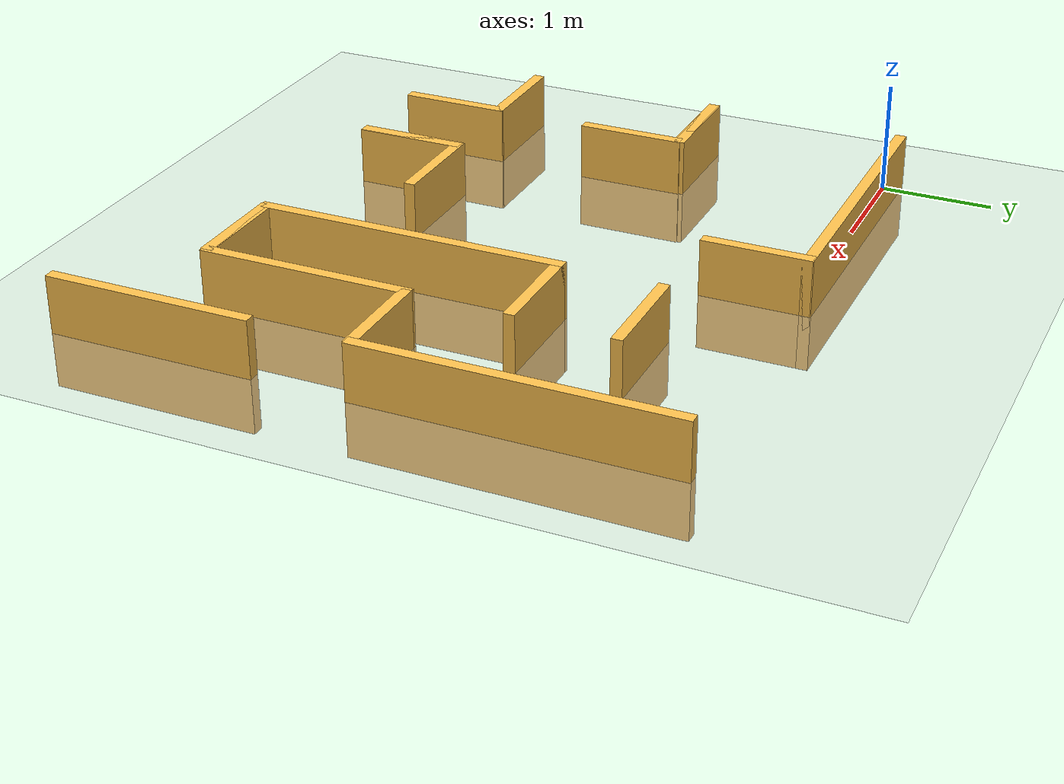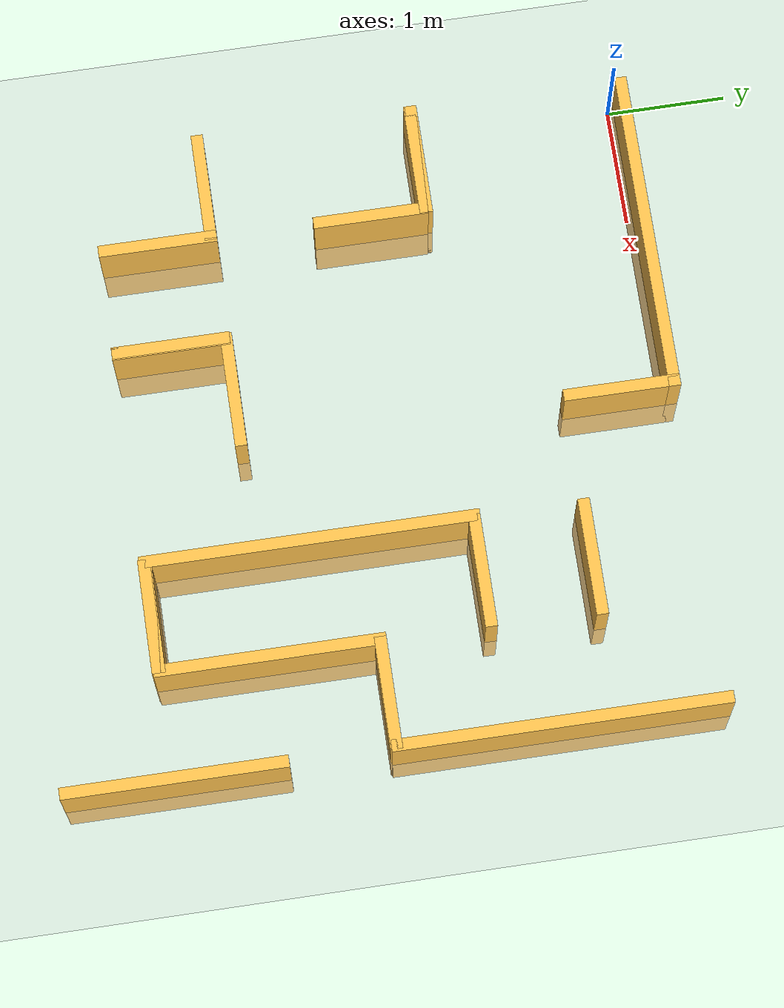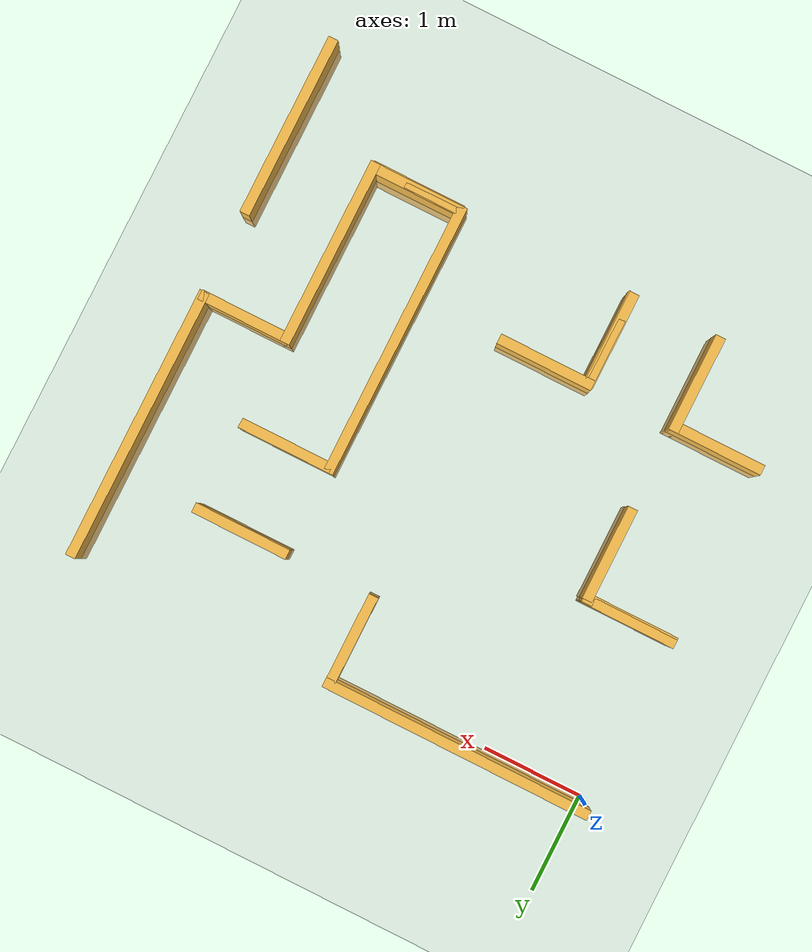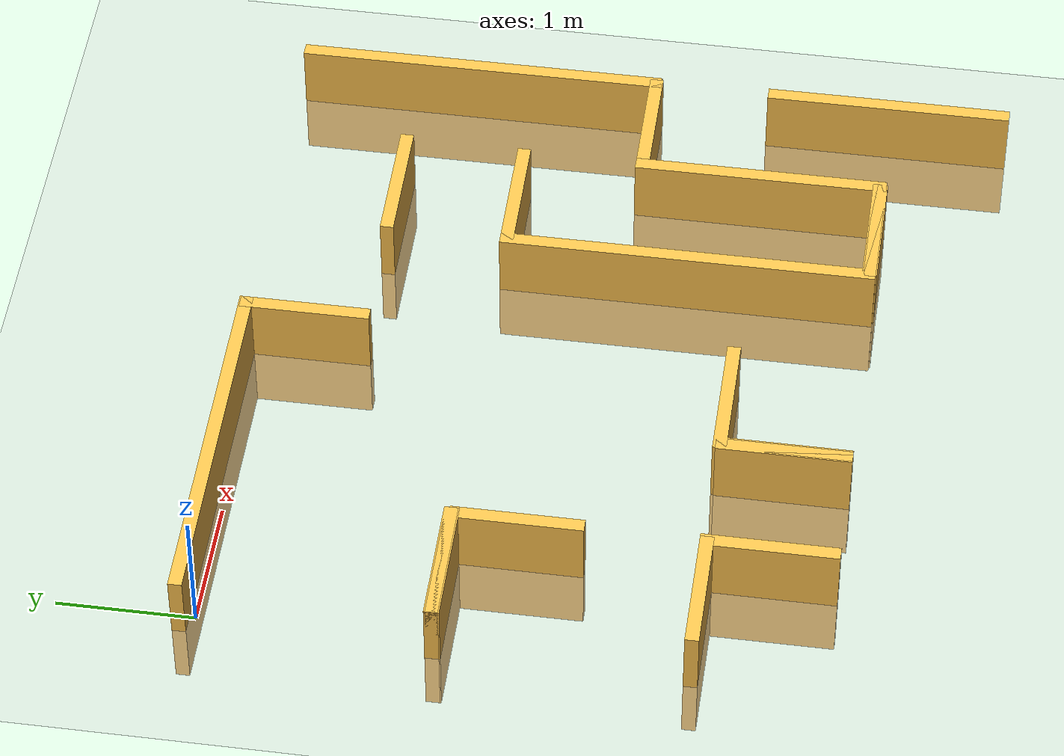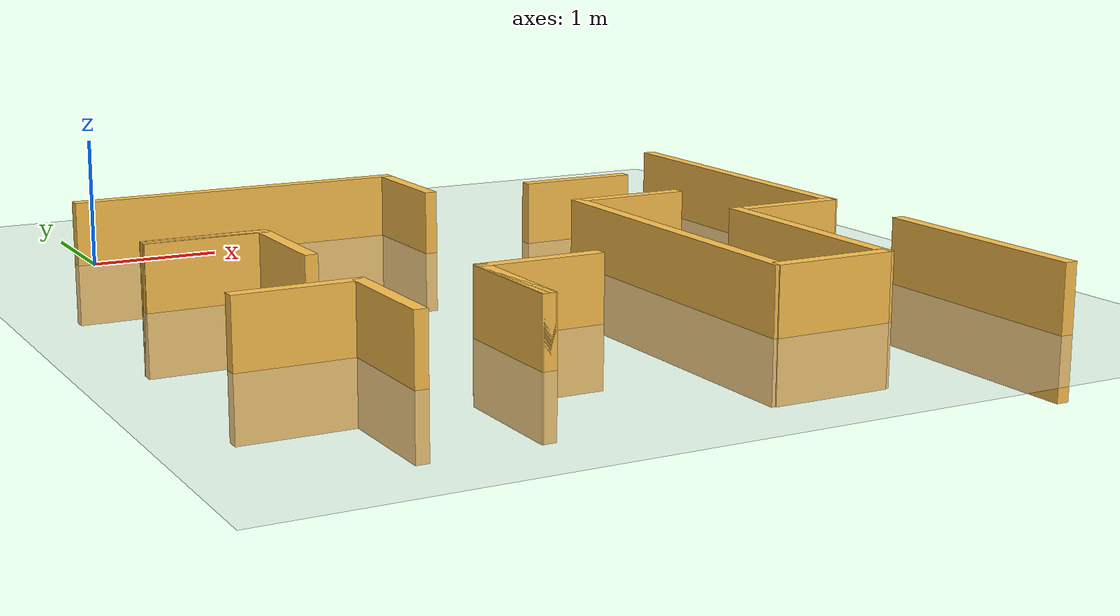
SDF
<sdf version="1.7">
 <world name="default">
  <model name="ground_plane">
   <static>1</static>
   <link name="link">
    <collision name="collision">
     <geometry><plane><normal>0 0 1</normal><size>100 100</size></plane></geometry>
     <surface><friction><ode><mu>100</mu><mu2>50</mu2></ode></friction></surface>
    </collision>
    <visual name="visual">
     <cast_shadows>0</cast_shadows>
     <geometry><plane><normal>0 0 1</normal><size>100 100</size></plane></geometry>
     <material>
      <script><uri>file://media/materials/scripts/gazebo.material</uri><name>Gazebo/Grey</name></script>
     </material>
    </visual>
   </link>
  </model>
  <model name="maze_test">
   <link name="Wall_20">
    <visual name="Wall_20_Visual">
     <pose>4.4 3.495 0 0 -0 0</pose>
     <geometry><box><size>0.1 1.89 1</size></box></geometry>
     <material>
      <script><uri>file://media/materials/scripts/gazebo.material</uri><name>Gazebo/Grey</name></script>
      <ambient>1 0.764706 0.305882 1</ambient>
      <diffuse>0.7 0.7 0.7 1</diffuse>
      <specular>0.01 0.01 0.01 1</specular>
      <emissive>0 0 0 1</emissive>
      <shader type="pixel"/>
     </material>
    </visual>
    <collision name="Wall_20_Collision">
     <pose>4.4 3.495 0 0 -0 0</pose>
     <geometry><box><size>0.1 1.89 1</size></box></geometry>
     <surface>
      <friction><ode><mu>1</mu><mu2>1</mu2><fdir1>0 0 0</fdir1><slip1>0</slip1><slip2>0</slip2></ode></friction>
      <bounce><restitution_coefficient>0</restitution_coefficient><threshold>1e+06</threshold></bounce>
      <contact>
       <collide_without_contact>0</collide_without_contact>
       <collide_without_contact_bitmask>1</collide_without_contact_bitmask>
       <collide_bitmask>1</collide_bitmask>
       <ode>
        <soft_cfm>0</soft_cfm>
        <soft_erp>0.2</soft_erp>
        <kp>1e+13</kp>
        <kd>1</kd>
        <max_vel>0.01</max_vel>
        <min_depth>0</min_depth>
       </ode>
       <bullet>
        <split_impulse>1</split_impulse>
        <split_impulse_penetration_threshold>-0.01</split_impulse_penetration_threshold>
        <soft_cfm>0</soft_cfm>
        <soft_erp>0.2</soft_erp>
        <kp>1e+13</kp>
        <kd>1</kd>
       </bullet>
      </contact>
     </surface>
    </collision>
   </link>
   <link name="Wall_21">
    <visual name="Wall_21_Visual">
     <pose>2.14 3.49 0 0 -0 0</pose>
     <geometry><box><size>0.98 0.1 1</size></box></geometry>
     <material>
      <script><uri>file://media/materials/scripts/gazebo.material</uri><name>Gazebo/Grey</name></script>
      <ambient>1 0.764706 0.305882 1</ambient>
      <diffuse>0.7 0.7 0.7 1</diffuse>
      <specular>0.01 0.01 0.01 1</specular>
      <emissive>0 0 0 1</emissive>
      <shader type="pixel"/>
     </material>
    </visual>
    <collision name="Wall_21_Collision">
     <pose>2.14 3.49 0 0 -0 0</pose>
     <geometry><box><size>0.98 0.1 1</size></box></geometry>
     <surface>
      <friction><ode><mu>1</mu><mu2>1</mu2><fdir1>0 0 0</fdir1><slip1>0</slip1><slip2>0</slip2></ode></friction>
      <bounce><restitution_coefficient>0</restitution_coefficient><threshold>1e+06</threshold></bounce>
      <contact>
       <collide_without_contact>0</collide_without_contact>
       <collide_without_contact_bitmask>1</collide_without_contact_bitmask>
       <collide_bitmask>1</collide_bitmask>
       <ode>
        <soft_cfm>0</soft_cfm>
        <soft_erp>0.2</soft_erp>
        <kp>1e+13</kp>
        <kd>1</kd>
        <max_vel>0.01</max_vel>
        <min_depth>0</min_depth>
       </ode>
       <bullet>
        <split_impulse>1</split_impulse>
        <split_impulse_penetration_threshold>-0.01</split_impulse_penetration_threshold>
        <soft_cfm>0</soft_cfm>
        <soft_erp>0.2</soft_erp>
        <kp>1e+13</kp>
        <kd>1</kd>
       </bullet>
      </contact>
     </surface>
    </collision>
   </link>
   <link name="Wall_22">
    <visual name="Wall_22_Visual">
     <pose>0.79 3.945 0 0 -0 0</pose>
     <geometry><box><size>0.1 0.99 1</size></box></geometry>
     <material>
      <script><uri>file://media/materials/scripts/gazebo.material</uri><name>Gazebo/Grey</name></script>
      <ambient>1 0.764706 0.305882 1</ambient>
      <diffuse>0.7 0.7 0.7 1</diffuse>
      <specular>0.01 0.01 0.01 1</specular>
      <emissive>0 0 0 1</emissive>
      <shader type="pixel"/>
     </material>
    </visual>
    <collision name="Wall_22_Collision">
     <pose>0.79 3.945 0 0 -0 0</pose>
     <geometry><box><size>0.1 0.99 1</size></box></geometry>
     <surface>
      <friction><ode><mu>1</mu><mu2>1</mu2><fdir1>0 0 0</fdir1><slip1>0</slip1><slip2>0</slip2></ode></friction>
      <bounce><restitution_coefficient>0</restitution_coefficient><threshold>1e+06</threshold></bounce>
      <contact>
       <collide_without_contact>0</collide_without_contact>
       <collide_without_contact_bitmask>1</collide_without_contact_bitmask>
       <collide_bitmask>1</collide_bitmask>
       <ode>
        <soft_cfm>0</soft_cfm>
        <soft_erp>0.2</soft_erp>
        <kp>1e+13</kp>
        <kd>1</kd>
        <max_vel>0.01</max_vel>
        <min_depth>0</min_depth>
       </ode>
       <bullet>
        <split_impulse>1</split_impulse>
        <split_impulse_penetration_threshold>-0.01</split_impulse_penetration_threshold>
        <soft_cfm>0</soft_cfm>
        <soft_erp>0.2</soft_erp>
        <kp>1e+13</kp>
        <kd>1</kd>
       </bullet>
      </contact>
     </surface>
    </collision>
   </link>
   <link name="Wall_23">
    <visual name="Wall_23_Visual">
     <pose>0.35 3.5 0 0 -0 0</pose>
     <geometry><box><size>0.94 0.1 1</size></box></geometry>
     <material>
      <script><uri>file://media/materials/scripts/gazebo.material</uri><name>Gazebo/Grey</name></script>
      <ambient>1 0.764706 0.305882 1</ambient>
      <diffuse>0.7 0.7 0.7 1</diffuse>
      <specular>0.01 0.01 0.01 1</specular>
      <emissive>0 0 0 1</emissive>
      <shader type="pixel"/>
     </material>
    </visual>
    <collision name="Wall_23_Collision">
     <pose>0.35 3.5 0 0 -0 0</pose>
     <geometry><box><size>0.94 0.1 1</size></box></geometry>
     <surface>
      <friction><ode><mu>1</mu><mu2>1</mu2><fdir1>0 0 0</fdir1><slip1>0</slip1><slip2>0</slip2></ode></friction>
      <bounce><restitution_coefficient>0</restitution_coefficient><threshold>1e+06</threshold></bounce>
      <contact>
       <collide_without_contact>0</collide_without_contact>
       <collide_without_contact_bitmask>1</collide_without_contact_bitmask>
       <collide_bitmask>1</collide_bitmask>
       <ode>
        <soft_cfm>0</soft_cfm>
        <soft_erp>0.2</soft_erp>
        <kp>1e+13</kp>
        <kd>1</kd>
        <max_vel>0.01</max_vel>
        <min_depth>0</min_depth>
       </ode>
       <bullet>
        <split_impulse>1</split_impulse>
        <split_impulse_penetration_threshold>-0.01</split_impulse_penetration_threshold>
        <soft_cfm>0</soft_cfm>
        <soft_erp>0.2</soft_erp>
        <kp>1e+13</kp>
        <kd>1</kd>
       </bullet>
      </contact>
     </surface>
    </collision>
   </link>
   <link name="Wall_24">
    <visual name="Wall_24_Visual">
     <pose>3.49 3.045 0 0 -0 0</pose>
     <geometry><box><size>0.1 2.79 1</size></box></geometry>
     <material>
      <script><uri>file://media/materials/scripts/gazebo.material</uri><name>Gazebo/Grey</name></script>
      <ambient>1 0.764706 0.305882 1</ambient>
      <diffuse>0.7 0.7 0.7 1</diffuse>
      <specular>0.01 0.01 0.01 1</specular>
      <emissive>0 0 0 1</emissive>
      <shader type="pixel"/>
     </material>
    </visual>
    <collision name="Wall_24_Collision">
     <pose>3.49 3.045 0 0 -0 0</pose>
     <geometry><box><size>0.1 2.79 1</size></box></geometry>
     <surface>
      <friction><ode><mu>1</mu><mu2>1</mu2><fdir1>0 0 0</fdir1><slip1>0</slip1><slip2>0</slip2></ode></friction>
      <bounce><restitution_coefficient>0</restitution_coefficient><threshold>1e+06</threshold></bounce>
      <contact>
       <collide_without_contact>0</collide_without_contact>
       <collide_without_contact_bitmask>1</collide_without_contact_bitmask>
       <collide_bitmask>1</collide_bitmask>
       <ode>
        <soft_cfm>0</soft_cfm>
        <soft_erp>0.2</soft_erp>
        <kp>1e+13</kp>
        <kd>1</kd>
        <max_vel>0.01</max_vel>
        <min_depth>0</min_depth>
       </ode>
       <bullet>
        <split_impulse>1</split_impulse>
        <split_impulse_penetration_threshold>-0.01</split_impulse_penetration_threshold>
        <soft_cfm>0</soft_cfm>
        <soft_erp>0.2</soft_erp>
        <kp>1e+13</kp>
        <kd>1</kd>
       </bullet>
      </contact>
     </surface>
    </collision>
   </link>
   <link name="Wall_25">
    <visual name="Wall_25_Visual">
     <pose>2.59 0.34 0 0 -0 0</pose>
     <geometry><box><size>0.1 0.96 1</size></box></geometry>
     <material>
      <script><uri>file://media/materials/scripts/gazebo.material</uri><name>Gazebo/Grey</name></script>
      <ambient>1 0.764706 0.305882 1</ambient>
      <diffuse>0.7 0.7 0.7 1</diffuse>
      <specular>0.01 0.01 0.01 1</specular>
      <emissive>0 0 0 1</emissive>
      <shader type="pixel"/>
     </material>
    </visual>
    <collision name="Wall_25_Collision">
     <pose>2.59 0.34 0 0 -0 0</pose>
     <geometry><box><size>0.1 0.96 1</size></box></geometry>
     <surface>
      <friction><ode><mu>1</mu><mu2>1</mu2><fdir1>0 0 0</fdir1><slip1>0</slip1><slip2>0</slip2></ode></friction>
      <bounce><restitution_coefficient>0</restitution_coefficient><threshold>1e+06</threshold></bounce>
      <contact>
       <collide_without_contact>0</collide_without_contact>
       <collide_without_contact_bitmask>1</collide_without_contact_bitmask>
       <collide_bitmask>1</collide_bitmask>
       <ode>
        <soft_cfm>0</soft_cfm>
        <soft_erp>0.2</soft_erp>
        <kp>1e+13</kp>
        <kd>1</kd>
        <max_vel>0.01</max_vel>
        <min_depth>0</min_depth>
       </ode>
       <bullet>
        <split_impulse>1</split_impulse>
        <split_impulse_penetration_threshold>-0.01</split_impulse_penetration_threshold>
        <soft_cfm>0</soft_cfm>
        <soft_erp>0.2</soft_erp>
        <kp>1e+13</kp>
        <kd>1</kd>
       </bullet>
      </contact>
     </surface>
    </collision>
   </link>
   <link name="Wall_26">
    <visual name="Wall_26_Visual">
     <pose>0.36 1.7 0 0 -0 0</pose>
     <geometry><box><size>0.96 0.1 1</size></box></geometry>
     <material>
      <script><uri>file://media/materials/scripts/gazebo.material</uri><name>Gazebo/Grey</name></script>
      <ambient>1 0.764706 0.305882 1</ambient>
      <diffuse>0.7 0.7 0.7 1</diffuse>
      <specular>0.01 0.01 0.01 1</specular>
      <emissive>0 0 0 1</emissive>
      <shader type="pixel"/>
     </material>
    </visual>
    <collision name="Wall_26_Collision">
     <pose>0.36 1.7 0 0 -0 0</pose>
     <geometry><box><size>0.96 0.1 1</size></box></geometry>
     <surface>
      <friction><ode><mu>1</mu><mu2>1</mu2><fdir1>0 0 0</fdir1><slip1>0</slip1><slip2>0</slip2></ode></friction>
      <bounce><restitution_coefficient>0</restitution_coefficient><threshold>1e+06</threshold></bounce>
      <contact>
       <collide_without_contact>0</collide_without_contact>
       <collide_without_contact_bitmask>1</collide_without_contact_bitmask>
       <collide_bitmask>1</collide_bitmask>
       <ode>
        <soft_cfm>0</soft_cfm>
        <soft_erp>0.2</soft_erp>
        <kp>1e+13</kp>
        <kd>1</kd>
        <max_vel>0.01</max_vel>
        <min_depth>0</min_depth>
       </ode>
       <bullet>
        <split_impulse>1</split_impulse>
        <split_impulse_penetration_threshold>-0.01</split_impulse_penetration_threshold>
        <soft_cfm>0</soft_cfm>
        <soft_erp>0.2</soft_erp>
        <kp>1e+13</kp>
        <kd>1</kd>
       </bullet>
      </contact>
     </surface>
    </collision>
   </link>
   <link name="Wall_27">
    <visual name="Wall_27_Visual">
     <pose>5.28 1.255 0 0 -0 0</pose>
     <geometry><box><size>0.1 2.77 1</size></box></geometry>
     <material>
      <script><uri>file://media/materials/scripts/gazebo.material</uri><name>Gazebo/Grey</name></script>
      <ambient>1 0.764706 0.305882 1</ambient>
      <diffuse>0.7 0.7 0.7 1</diffuse>
      <specular>0.01 0.01 0.01 1</specular>
      <emissive>0 0 0 1</emissive>
      <shader type="pixel"/>
     </material>
    </visual>
    <collision name="Wall_27_Collision">
     <pose>5.28 1.255 0 0 -0 0</pose>
     <geometry><box><size>0.1 2.77 1</size></box></geometry>
     <surface>
      <friction><ode><mu>1</mu><mu2>1</mu2><fdir1>0 0 0</fdir1><slip1>0</slip1><slip2>0</slip2></ode></friction>
      <bounce><restitution_coefficient>0</restitution_coefficient><threshold>1e+06</threshold></bounce>
      <contact>
       <collide_without_contact>0</collide_without_contact>
       <collide_without_contact_bitmask>1</collide_without_contact_bitmask>
       <collide_bitmask>1</collide_bitmask>
       <ode>
        <soft_cfm>0</soft_cfm>
        <soft_erp>0.2</soft_erp>
        <kp>1e+13</kp>
        <kd>1</kd>
        <max_vel>0.01</max_vel>
        <min_depth>0</min_depth>
       </ode>
       <bullet>
        <split_impulse>1</split_impulse>
        <split_impulse_penetration_threshold>-0.01</split_impulse_penetration_threshold>
        <soft_cfm>0</soft_cfm>
        <soft_erp>0.2</soft_erp>
        <kp>1e+13</kp>
        <kd>1</kd>
       </bullet>
      </contact>
     </surface>
    </collision>
   </link>
   <link name="Wall_28">
    <visual name="Wall_28_Visual">
     <pose>0.36 1.69 0 0 -0 0</pose>
     <geometry><box><size>0.96 0.1 1</size></box></geometry>
     <material>
      <script><uri>file://media/materials/scripts/gazebo.material</uri><name>Gazebo/Grey</name></script>
      <ambient>1 0.764706 0.305882 1</ambient>
      <diffuse>0.7 0.7 0.7 1</diffuse>
      <specular>0.01 0.01 0.01 1</specular>
      <emissive>0 0 0 1</emissive>
      <shader type="pixel"/>
     </material>
    </visual>
    <collision name="Wall_28_Collision">
     <pose>0.36 1.69 0 0 -0 0</pose>
     <geometry><box><size>0.96 0.1 1</size></box></geometry>
     <surface>
      <friction><ode><mu>1</mu><mu2>1</mu2><fdir1>0 0 0</fdir1><slip1>0</slip1><slip2>0</slip2></ode></friction>
      <bounce><restitution_coefficient>0</restitution_coefficient><threshold>1e+06</threshold></bounce>
      <contact>
       <collide_without_contact>0</collide_without_contact>
       <collide_without_contact_bitmask>1</collide_without_contact_bitmask>
       <collide_bitmask>1</collide_bitmask>
       <ode>
        <soft_cfm>0</soft_cfm>
        <soft_erp>0.2</soft_erp>
        <kp>1e+13</kp>
        <kd>1</kd>
        <max_vel>0.01</max_vel>
        <min_depth>0</min_depth>
       </ode>
       <bullet>
        <split_impulse>1</split_impulse>
        <split_impulse_penetration_threshold>-0.01</split_impulse_penetration_threshold>
        <soft_cfm>0</soft_cfm>
        <soft_erp>0.2</soft_erp>
        <kp>1e+13</kp>
        <kd>1</kd>
       </bullet>
      </contact>
     </surface>
    </collision>
   </link>
   <link name="Wall_29">
    <visual name="Wall_29_Visual">
     <pose>1.26 -0.1 0 0 -0 0</pose>
     <geometry><box><size>2.76 0.1 1</size></box></geometry>
     <material>
      <script><uri>file://media/materials/scripts/gazebo.material</uri><name>Gazebo/Grey</name></script>
      <ambient>1 0.764706 0.305882 1</ambient>
      <diffuse>0.7 0.7 0.7 1</diffuse>
      <specular>0.01 0.01 0.01 1</specular>
      <emissive>0 0 0 1</emissive>
      <shader type="pixel"/>
     </material>
    </visual>
    <collision name="Wall_29_Collision">
     <pose>1.26 -0.1 0 0 -0 0</pose>
     <geometry><box><size>2.76 0.1 1</size></box></geometry>
     <surface>
      <friction><ode><mu>1</mu><mu2>1</mu2><fdir1>0 0 0</fdir1><slip1>0</slip1><slip2>0</slip2></ode></friction>
      <bounce><restitution_coefficient>0</restitution_coefficient><threshold>1e+06</threshold></bounce>
      <contact>
       <collide_without_contact>0</collide_without_contact>
       <collide_without_contact_bitmask>1</collide_without_contact_bitmask>
       <collide_bitmask>1</collide_bitmask>
       <ode>
        <soft_cfm>0</soft_cfm>
        <soft_erp>0.2</soft_erp>
        <kp>1e+13</kp>
        <kd>1</kd>
        <max_vel>0.01</max_vel>
        <min_depth>0</min_depth>
       </ode>
       <bullet>
        <split_impulse>1</split_impulse>
        <split_impulse_penetration_threshold>-0.01</split_impulse_penetration_threshold>
        <soft_cfm>0</soft_cfm>
        <soft_erp>0.2</soft_erp>
        <kp>1e+13</kp>
        <kd>1</kd>
       </bullet>
      </contact>
     </surface>
    </collision>
   </link>
   <link name="Wall_30">
    <visual name="Wall_30_Visual">
     <pose>1.7 3.95 0 0 -0 0</pose>
     <geometry><box><size>0.1 0.98 1</size></box></geometry>
     <material>
      <script><uri>file://media/materials/scripts/gazebo.material</uri><name>Gazebo/Grey</name></script>
      <ambient>1 0.764706 0.305882 1</ambient>
      <diffuse>0.7 0.7 0.7 1</diffuse>
      <specular>0.01 0.01 0.01 1</specular>
      <emissive>0 0 0 1</emissive>
      <shader type="pixel"/>
     </material>
    </visual>
    <collision name="Wall_30_Collision">
     <pose>1.7 3.95 0 0 -0 0</pose>
     <geometry><box><size>0.1 0.98 1</size></box></geometry>
     <surface>
      <friction><ode><mu>1</mu><mu2>1</mu2><fdir1>0 0 0</fdir1><slip1>0</slip1><slip2>0</slip2></ode></friction>
      <bounce><restitution_coefficient>0</restitution_coefficient><threshold>1e+06</threshold></bounce>
      <contact>
       <collide_without_contact>0</collide_without_contact>
       <collide_without_contact_bitmask>1</collide_without_contact_bitmask>
       <collide_bitmask>1</collide_bitmask>
       <ode>
        <soft_cfm>0</soft_cfm>
        <soft_erp>0.2</soft_erp>
        <kp>1e+13</kp>
        <kd>1</kd>
        <max_vel>0.01</max_vel>
        <min_depth>0</min_depth>
       </ode>
       <bullet>
        <split_impulse>1</split_impulse>
        <split_impulse_penetration_threshold>-0.01</split_impulse_penetration_threshold>
        <soft_cfm>0</soft_cfm>
        <soft_erp>0.2</soft_erp>
        <kp>1e+13</kp>
        <kd>1</kd>
       </bullet>
      </contact>
     </surface>
    </collision>
   </link>
   <link name="Wall_31">
    <visual name="Wall_31_Visual">
     <pose>3.945 4.39 0 0 -0 0</pose>
     <geometry><box><size>0.95 0.1 1</size></box></geometry>
     <material>
      <script><uri>file://media/materials/scripts/gazebo.material</uri><name>Gazebo/Grey</name></script>
      <ambient>1 0.764706 0.305882 1</ambient>
      <diffuse>0.7 0.7 0.7 1</diffuse>
      <specular>0.01 0.01 0.01 1</specular>
      <emissive>0 0 0 1</emissive>
      <shader type="pixel"/>
     </material>
    </visual>
    <collision name="Wall_31_Collision">
     <pose>3.945 4.39 0 0 -0 0</pose>
     <geometry><box><size>0.95 0.1 1</size></box></geometry>
     <surface>
      <friction><ode><mu>1</mu><mu2>1</mu2><fdir1>0 0 0</fdir1><slip1>0</slip1><slip2>0</slip2></ode></friction>
      <bounce><restitution_coefficient>0</restitution_coefficient><threshold>1e+06</threshold></bounce>
      <contact>
       <collide_without_contact>0</collide_without_contact>
       <collide_without_contact_bitmask>1</collide_without_contact_bitmask>
       <collide_bitmask>1</collide_bitmask>
       <ode>
        <soft_cfm>0</soft_cfm>
        <soft_erp>0.2</soft_erp>
        <kp>1e+13</kp>
        <kd>1</kd>
        <max_vel>0.01</max_vel>
        <min_depth>0</min_depth>
       </ode>
       <bullet>
        <split_impulse>1</split_impulse>
        <split_impulse_penetration_threshold>-0.01</split_impulse_penetration_threshold>
        <soft_cfm>0</soft_cfm>
        <soft_erp>0.2</soft_erp>
        <kp>1e+13</kp>
        <kd>1</kd>
       </bullet>
      </contact>
     </surface>
    </collision>
   </link>
   <link name="Wall_33">
    <visual name="Wall_33_Visual">
     <pose>3.945 4.4 0 0 -0 0</pose>
     <geometry><box><size>0.95 0.1 1</size></box></geometry>
     <material>
      <script><uri>file://media/materials/scripts/gazebo.material</uri><name>Gazebo/Grey</name></script>
      <ambient>1 0.764706 0.305882 1</ambient>
      <diffuse>0.7 0.7 0.7 1</diffuse>
      <specular>0.01 0.01 0.01 1</specular>
      <emissive>0 0 0 1</emissive>
      <shader type="pixel"/>
     </material>
    </visual>
    <collision name="Wall_33_Collision">
     <pose>3.945 4.4 0 0 -0 0</pose>
     <geometry><box><size>0.95 0.1 1</size></box></geometry>
     <surface>
      <friction><ode><mu>1</mu><mu2>1</mu2><fdir1>0 0 0</fdir1><slip1>0</slip1><slip2>0</slip2></ode></friction>
      <bounce><restitution_coefficient>0</restitution_coefficient><threshold>1e+06</threshold></bounce>
      <contact>
       <collide_without_contact>0</collide_without_contact>
       <collide_without_contact_bitmask>1</collide_without_contact_bitmask>
       <collide_bitmask>1</collide_bitmask>
       <ode>
        <soft_cfm>0</soft_cfm>
        <soft_erp>0.2</soft_erp>
        <kp>1e+13</kp>
        <kd>1</kd>
        <max_vel>0.01</max_vel>
        <min_depth>0</min_depth>
       </ode>
       <bullet>
        <split_impulse>1</split_impulse>
        <split_impulse_penetration_threshold>-0.01</split_impulse_penetration_threshold>
        <soft_cfm>0</soft_cfm>
        <soft_erp>0.2</soft_erp>
        <kp>1e+13</kp>
        <kd>1</kd>
       </bullet>
      </contact>
     </surface>
    </collision>
   </link>
   <link name="Wall_34">
    <visual name="Wall_34_Visual">
     <pose>1.69 3.95 0 0 -0 0</pose>
     <geometry><box><size>0.1 0.98 1</size></box></geometry>
     <material>
      <script><uri>file://media/materials/scripts/gazebo.material</uri><name>Gazebo/Grey</name></script>
      <ambient>1 0.764706 0.305882 1</ambient>
      <diffuse>0.7 0.7 0.7 1</diffuse>
      <specular>0.01 0.01 0.01 1</specular>
      <emissive>0 0 0 1</emissive>
      <shader type="pixel"/>
     </material>
    </visual>
    <collision name="Wall_34_Collision">
     <pose>1.69 3.95 0 0 -0 0</pose>
     <geometry><box><size>0.1 0.98 1</size></box></geometry>
     <surface>
      <friction><ode><mu>1</mu><mu2>1</mu2><fdir1>0 0 0</fdir1><slip1>0</slip1><slip2>0</slip2></ode></friction>
      <bounce><restitution_coefficient>0</restitution_coefficient><threshold>1e+06</threshold></bounce>
      <contact>
       <collide_without_contact>0</collide_without_contact>
       <collide_without_contact_bitmask>1</collide_without_contact_bitmask>
       <collide_bitmask>1</collide_bitmask>
       <ode>
        <soft_cfm>0</soft_cfm>
        <soft_erp>0.2</soft_erp>
        <kp>1e+13</kp>
        <kd>1</kd>
        <max_vel>0.01</max_vel>
        <min_depth>0</min_depth>
       </ode>
       <bullet>
        <split_impulse>1</split_impulse>
        <split_impulse_penetration_threshold>-0.01</split_impulse_penetration_threshold>
        <soft_cfm>0</soft_cfm>
        <soft_erp>0.2</soft_erp>
        <kp>1e+13</kp>
        <kd>1</kd>
       </bullet>
      </contact>
     </surface>
    </collision>
   </link>
   <link name="Wall_35">
    <visual name="Wall_35_Visual">
     <pose>3.955 1.7 0 0 -0 0</pose>
     <geometry><box><size>0.95 0.1 1</size></box></geometry>
     <material>
      <script><uri>file://media/materials/scripts/gazebo.material</uri><name>Gazebo/Grey</name></script>
      <ambient>1 0.764706 0.305882 1</ambient>
      <diffuse>0.7 0.7 0.7 1</diffuse>
      <specular>0.01 0.01 0.01 1</specular>
      <emissive>0 0 0 1</emissive>
      <shader type="pixel"/>
     </material>
    </visual>
    <collision name="Wall_35_Collision">
     <pose>3.955 1.7 0 0 -0 0</pose>
     <geometry><box><size>0.95 0.1 1</size></box></geometry>
     <surface>
      <friction><ode><mu>1</mu><mu2>1</mu2><fdir1>0 0 0</fdir1><slip1>0</slip1><slip2>0</slip2></ode></friction>
      <bounce><restitution_coefficient>0</restitution_coefficient><threshold>1e+06</threshold></bounce>
      <contact>
       <collide_without_contact>0</collide_without_contact>
       <collide_without_contact_bitmask>1</collide_without_contact_bitmask>
       <collide_bitmask>1</collide_bitmask>
       <ode>
        <soft_cfm>0</soft_cfm>
        <soft_erp>0.2</soft_erp>
        <kp>1e+13</kp>
        <kd>1</kd>
        <max_vel>0.01</max_vel>
        <min_depth>0</min_depth>
       </ode>
       <bullet>
        <split_impulse>1</split_impulse>
        <split_impulse_penetration_threshold>-0.01</split_impulse_penetration_threshold>
        <soft_cfm>0</soft_cfm>
        <soft_erp>0.2</soft_erp>
        <kp>1e+13</kp>
        <kd>1</kd>
       </bullet>
      </contact>
     </surface>
    </collision>
   </link>
   <link name="Wall_36">
    <visual name="Wall_36_Visual">
     <pose>3.97 0.8 0 0 -0 0</pose>
     <geometry><box><size>0.98 0.1 1</size></box></geometry>
     <material>
      <script><uri>file://media/materials/scripts/gazebo.material</uri><name>Gazebo/Grey</name></script>
      <ambient>1 0.764706 0.305882 1</ambient>
      <diffuse>0.7 0.7 0.7 1</diffuse>
      <specular>0.01 0.01 0.01 1</specular>
      <emissive>0 0 0 1</emissive>
      <shader type="pixel"/>
     </material>
    </visual>
    <collision name="Wall_36_Collision">
     <pose>3.97 0.8 0 0 -0 0</pose>
     <geometry><box><size>0.98 0.1 1</size></box></geometry>
     <surface>
      <friction><ode><mu>1</mu><mu2>1</mu2><fdir1>0 0 0</fdir1><slip1>0</slip1><slip2>0</slip2></ode></friction>
      <bounce><restitution_coefficient>0</restitution_coefficient><threshold>1e+06</threshold></bounce>
      <contact>
       <collide_without_contact>0</collide_without_contact>
       <collide_without_contact_bitmask>1</collide_without_contact_bitmask>
       <collide_bitmask>1</collide_bitmask>
       <ode>
        <soft_cfm>0</soft_cfm>
        <soft_erp>0.2</soft_erp>
        <kp>1e+13</kp>
        <kd>1</kd>
        <max_vel>0.01</max_vel>
        <min_depth>0</min_depth>
       </ode>
       <bullet>
        <split_impulse>1</split_impulse>
        <split_impulse_penetration_threshold>-0.01</split_impulse_penetration_threshold>
        <soft_cfm>0</soft_cfm>
        <soft_erp>0.2</soft_erp>
        <kp>1e+13</kp>
        <kd>1</kd>
       </bullet>
      </contact>
     </surface>
    </collision>
   </link>
   <link name="Wall_37">
    <visual name="Wall_37_Visual">
     <pose>4.845 2.6 0 0 -0 0</pose>
     <geometry><box><size>0.93 0.1 1</size></box></geometry>
     <material>
      <script><uri>file://media/materials/scripts/gazebo.material</uri><name>Gazebo/Grey</name></script>
      <ambient>1 0.764706 0.305882 1</ambient>
      <diffuse>0.7 0.7 0.7 1</diffuse>
      <specular>0.01 0.01 0.01 1</specular>
      <emissive>0 0 0 1</emissive>
      <shader type="pixel"/>
     </material>
    </visual>
    <collision name="Wall_37_Collision">
     <pose>4.845 2.6 0 0 -0 0</pose>
     <geometry><box><size>0.93 0.1 1</size></box></geometry>
     <surface>
      <friction><ode><mu>1</mu><mu2>1</mu2><fdir1>0 0 0</fdir1><slip1>0</slip1><slip2>0</slip2></ode></friction>
      <bounce><restitution_coefficient>0</restitution_coefficient><threshold>1e+06</threshold></bounce>
      <contact>
       <collide_without_contact>0</collide_without_contact>
       <collide_without_contact_bitmask>1</collide_without_contact_bitmask>
       <collide_bitmask>1</collide_bitmask>
       <ode>
        <soft_cfm>0</soft_cfm>
        <soft_erp>0.2</soft_erp>
        <kp>1e+13</kp>
        <kd>1</kd>
        <max_vel>0.01</max_vel>
        <min_depth>0</min_depth>
       </ode>
       <bullet>
        <split_impulse>1</split_impulse>
        <split_impulse_penetration_threshold>-0.01</split_impulse_penetration_threshold>
        <soft_cfm>0</soft_cfm>
        <soft_erp>0.2</soft_erp>
        <kp>1e+13</kp>
        <kd>1</kd>
       </bullet>
      </contact>
     </surface>
    </collision>
   </link>
   <link name="Wall_38">
    <visual name="Wall_38_Visual">
     <pose>5.28 4.38 0 0 -0 0</pose>
     <geometry><box><size>0.1 1.84 1</size></box></geometry>
     <material>
      <script><uri>file://media/materials/scripts/gazebo.material</uri><name>Gazebo/Grey</name></script>
      <ambient>1 0.764706 0.305882 1</ambient>
      <diffuse>0.7 0.7 0.7 1</diffuse>
      <specular>0.01 0.01 0.01 1</specular>
      <emissive>0 0 0 1</emissive>
      <shader type="pixel"/>
     </material>
    </visual>
    <collision name="Wall_38_Collision">
     <pose>5.28 4.38 0 0 -0 0</pose>
     <geometry><box><size>0.1 1.84 1</size></box></geometry>
     <surface>
      <friction><ode><mu>1</mu><mu2>1</mu2><fdir1>0 0 0</fdir1><slip1>0</slip1><slip2>0</slip2></ode></friction>
      <bounce><restitution_coefficient>0</restitution_coefficient><threshold>1e+06</threshold></bounce>
      <contact>
       <collide_without_contact>0</collide_without_contact>
       <collide_without_contact_bitmask>1</collide_without_contact_bitmask>
       <collide_bitmask>1</collide_bitmask>
       <ode>
        <soft_cfm>0</soft_cfm>
        <soft_erp>0.2</soft_erp>
        <kp>1e+13</kp>
        <kd>1</kd>
        <max_vel>0.01</max_vel>
        <min_depth>0</min_depth>
       </ode>
       <bullet>
        <split_impulse>1</split_impulse>
        <split_impulse_penetration_threshold>-0.01</split_impulse_penetration_threshold>
        <soft_cfm>0</soft_cfm>
        <soft_erp>0.2</soft_erp>
        <kp>1e+13</kp>
        <kd>1</kd>
       </bullet>
      </contact>
     </surface>
    </collision>
   </link>
   <link name="Wall_39">
    <visual name="Wall_39_Visual">
     <pose>0.8 2.16 0 0 -0 0</pose>
     <geometry><box><size>0.1 0.96 1</size></box></geometry>
     <material>
      <script><uri>file://media/materials/scripts/gazebo.material</uri><name>Gazebo/Grey</name></script>
      <ambient>1 0.764706 0.305882 1</ambient>
      <diffuse>0.7 0.7 0.7 1</diffuse>
      <specular>0.01 0.01 0.01 1</specular>
      <emissive>0 0 0 1</emissive>
      <shader type="pixel"/>
     </material>
    </visual>
    <collision name="Wall_39_Collision">
     <pose>0.8 2.16 0 0 -0 0</pose>
     <geometry><box><size>0.1 0.96 1</size></box></geometry>
     <surface>
      <friction><ode><mu>1</mu><mu2>1</mu2><fdir1>0 0 0</fdir1><slip1>0</slip1><slip2>0</slip2></ode></friction>
      <bounce><restitution_coefficient>0</restitution_coefficient><threshold>1e+06</threshold></bounce>
      <contact>
       <collide_without_contact>0</collide_without_contact>
       <collide_without_contact_bitmask>1</collide_without_contact_bitmask>
       <collide_bitmask>1</collide_bitmask>
       <ode>
        <soft_cfm>0</soft_cfm>
        <soft_erp>0.2</soft_erp>
        <kp>1e+13</kp>
        <kd>1</kd>
        <max_vel>0.01</max_vel>
        <min_depth>0</min_depth>
       </ode>
       <bullet>
        <split_impulse>1</split_impulse>
        <split_impulse_penetration_threshold>-0.01</split_impulse_penetration_threshold>
        <soft_cfm>0</soft_cfm>
        <soft_erp>0.2</soft_erp>
        <kp>1e+13</kp>
        <kd>1</kd>
       </bullet>
      </contact>
     </surface>
    </collision>
   </link>
   <static>1</static>
   <pose>0 0 0 3.14 -0 0</pose>
  </model>
 </world>
</sdf>
